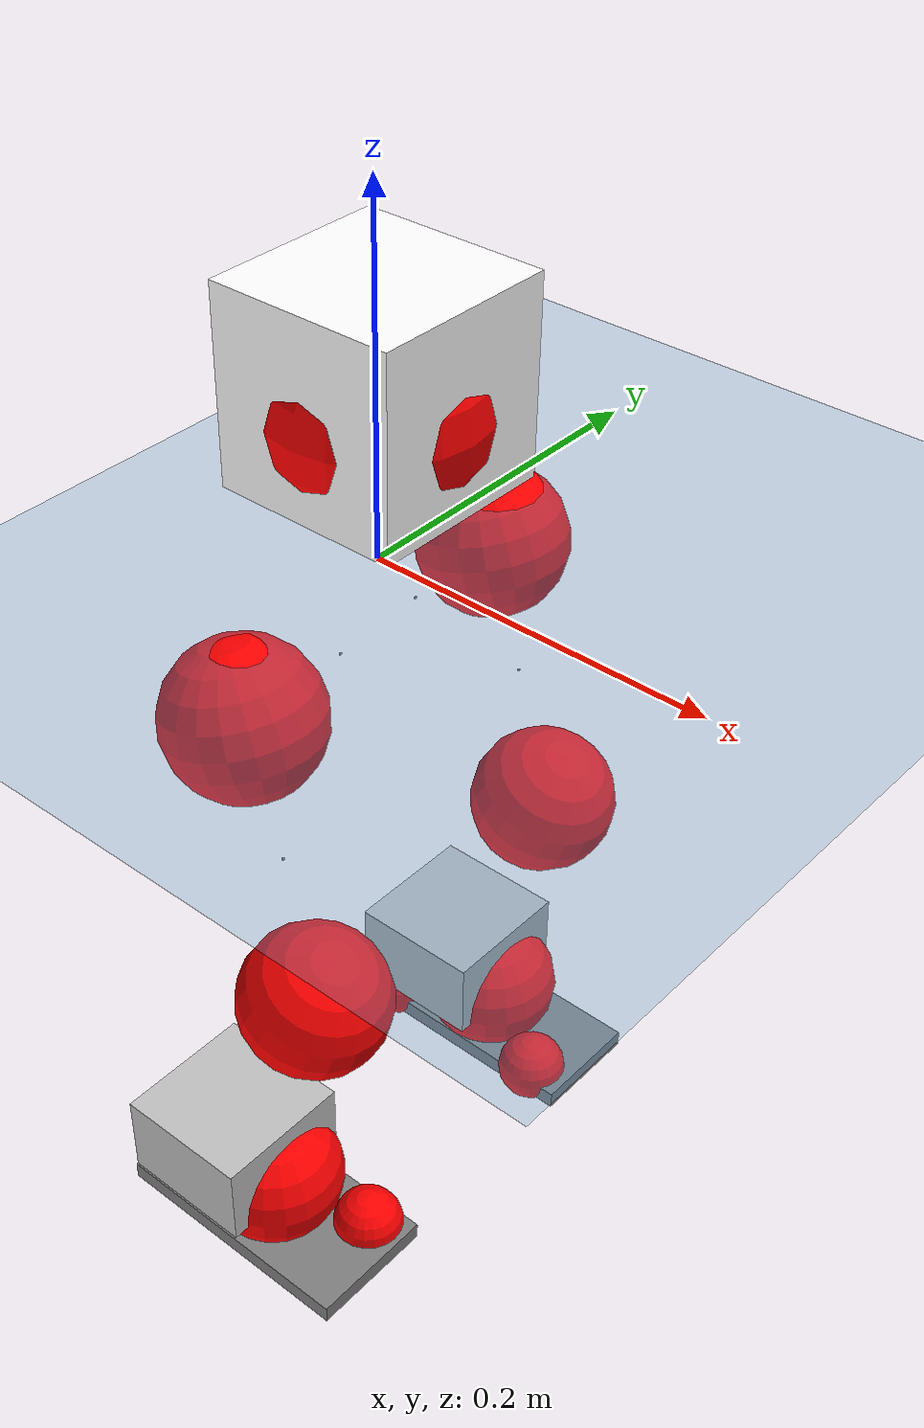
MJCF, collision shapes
<mujoco model="pi_12dof_release_v1">
  <compiler angle="radian" assetdir="assets" balanceinertia="true" inertiafromgeom="false"/>

  <option timestep="0.005" density="1.2" viscosity="2e-05"/>

  <size nkey="1"/>

  <visual>
    <quality shadowsize="8192"/>
    <map shadowclip="0.5"/>
  </visual>

  <default>
    <default class="/">
      <joint armature="0.01" damping="0.01" frictionloss="0.01"/>
      <geom contype="0" conaffinity="0" group="1" solref="-1000 -80"/>
      <site size="0.01 0.005 0.005" group="5"/>
      <general forcelimited="true" biastype="affine" gainprm="20" biasprm="0 -20 -0.5"/>
      <default class="foot">
        <geom size="0.0845 0.036 0.005" type="box" condim="6" group="4" priority="1" friction="0.9 0.2 0.2" solimp="0.015 1 0.005"/>
      </default>
      <default class="reward_collision_sphere">
        <geom group="5" rgba="1 0 0 1"/>
      </default>
    </default>
  </default>

  <asset>
    <texture type="skybox" colorspace="auto" name="//unnamed_texture_0" builtin="gradient" rgb1="0.95 0.95 0.95" rgb2="0.95 0.95 0.95" width="100" height="600"/>
    <texture type="2d" colorspace="auto" name="texplane" builtin="checker" rgb1="0.345 0.575 0.748" rgb2="0.345 0.575 0.748" markrgb="1 1 1" width="512" height="512"/>
    <material name="MatPlane" class="/" texture="texplane" texuniform="true" texrepeat="2 2" specular="0.9"/>
    <mesh name="baselink_1" class="/" file="baselink_1.STL"/>
    <mesh name="r_hip_pitch_link" class="/" file="r_hip_pitch_link.STL"/>
    <mesh name="r_hip_roll_link" class="/" file="r_hip_roll_link.STL"/>
    <mesh name="r_thigh_link" class="/" file="r_thigh_link.STL"/>
    <mesh name="r_calf_link" class="/" file="r_calf_link.STL"/>
    <mesh name="r_ankle_pitch_link" class="/" file="r_ankle_pitch_link.STL"/>
    <mesh name="r_ankle_roll_link" class="/" file="r_ankle_roll_link.STL"/>
    <mesh name="l_hip_pitch_link" class="/" file="l_hip_pitch_link.STL"/>
    <mesh name="l_hip_roll_link" class="/" file="l_hip_roll_link.STL"/>
    <mesh name="l_thigh_link" class="/" file="l_thigh_link.STL"/>
    <mesh name="l_calf_link" class="/" file="l_calf_link.STL"/>
    <mesh name="l_ankle_pitch_link" class="/" file="l_ankle_pitch_link.STL"/>
    <mesh name="l_ankle_roll_link" class="/" file="l_ankle_roll_link.STL"/>
  </asset>

  <worldbody>
    <geom name="floor" class="/" size="100 100 0.125" type="plane" group="0" material="MatPlane"/>
    <light name="toplight_shadow" class="/" pos="0 0 5" dir="0.0990148 0.0990148 -0.990148" type="directional" ambient="0.04 0.04 0.04" diffuse="0.55 0.55 0.55" specular="0.12 0.12 0.12"/>
    <light name="toplight_fill" class="/" pos="0 0 5" dir="0.0990148 0.0990148 -0.990148" type="directional" castshadow="false" ambient="0.04 0.04 0.04" diffuse="0.3 0.3 0.3" specular="0.08 0.08 0.08"/>
    <body name="trunk" pos="0.000654995 0.000674343 0.000990969" quat="1 -1.31401e-05 5.3794e-05 9.19973e-06">
      <inertial pos="0.00481466 0.00121668 0.049223" quat="0.687684 0.0215829 0.0270724 0.725184" mass="2.73928" diaginertia="0.00411878 0.0200853 0.0110139"/>
      <joint name="//unnamed_joint_0" type="free"/>
      <geom name="//unnamed_geom_1" class="/" type="mesh" density="0" rgba="1 1 1 1" mesh="baselink_1"/>
      <geom name="//unnamed_geom_2" class="/" size="0.0539672 0.0539672 0.0539672" pos="0 0 0.0971451" type="box" rgba="1 1 1 1"/>
      <geom name="//unnamed_geom_3" class="reward_collision_sphere" size="0.0593639" pos="0 0 0.085002"/>
      <site name="imu" class="/" pos="-0.00204624 0.00636251 0.00330554" size="0.0107934"/>
      <camera name="track" class="/" pos="0 -2.35769 0" quat="0.707107 0.707107 0 0" mode="trackcom"/>
      <camera name="ego_camera" class="/" pos="0.0633652 0 0.218576" quat="-0.5 -0.5 0.5 0.5"/>
      <body name="r_hip_pitch_link" pos="0.00122417 -0.0317065 -0.0429767" quat="0.992141 -5.58298e-05 -0.125122 0.00026085">
        <inertial pos="-8.79365e-05 -0.0646808 0.001569" quat="-0.0249452 0.704467 -0.0272046 0.708776" mass="0.471908" diaginertia="4.67959e-05 0.000231035 0.000216256"/>
        <joint name="r_hip_pitch_joint" class="/" pos="0 0 0" axis="-0.00992587 -0.999948 0.00229094" stiffness="0.00102955" range="-1.76102 1.22126" armature="0.0104571" damping="0.0118112" frictionloss="0.00942294"/>
        <geom name="//unnamed_geom_4" class="/" type="mesh" density="0" rgba="0.75294 0.75294 0.75294 1" mesh="r_hip_pitch_link"/>
        <geom name="//unnamed_geom_5" class="/" size="0.000539672 0.000539672 0.000539672" type="box" rgba="0.75294 0.75294 0.75294 1"/>
        <body name="r_hip_roll_link" pos="0.00206521 -0.0712499 0.000334026" quat="1 -2.22954e-08 2.61991e-06 2.87387e-06">
          <inertial pos="-0.00137101 0.0013273 -0.07322" quat="0.70071 -0.0842981 -0.0860704 0.703201" mass="0.489616" diaginertia="0.000146144 0.000636565 0.000328698"/>
          <joint name="r_hip_roll_joint" class="/" pos="0 0 0" axis="-0.999995 -0.00213152 0.00219737" stiffness="0.000952517" range="-0.107621 0.472043" armature="0.0105243" damping="0.0441214" frictionloss="0.0105374"/>
          <geom name="//unnamed_geom_6" class="/" type="mesh" density="0" rgba="0.75294 0.75294 0.75294 1" mesh="r_hip_roll_link"/>
          <geom name="//unnamed_geom_7" class="/" size="0.000539672 0.000539672 0.000539672" type="box" rgba="0.75294 0.75294 0.75294 1"/>
          <geom name="//unnamed_geom_8" class="reward_collision_sphere" size="0.0431737"/>
          <body name="r_thigh_link" pos="-0.00173784 0.00280839 -0.0844569" quat="1 -0.000707223 2.4477e-05 0.000117091">
            <inertial pos="0.000672982 0.00134282 -0.0538024" quat="0.737589 0.675243 -0.00106909 -0.00281656" mass="0.13767" diaginertia="5.364e-05 0.00020495 0.000158182"/>
            <joint name="r_thigh_joint" class="/" pos="0 0 0" axis="3.83343e-05 0.000191391 -1" range="-0.304255 0.598133" armature="0.00958974" damping="0.00584654" frictionloss="0.0103246"/>
            <geom name="//unnamed_geom_9" class="/" type="mesh" density="0" rgba="0.75294 0.75294 0.75294 1" mesh="r_thigh_link"/>
            <geom name="//unnamed_geom_10" class="/" size="0.000539672 0.000539672 0.000539672" type="box" rgba="0.75294 0.75294 0.75294 1"/>
            <body name="r_calf_link" pos="0.00225253 -0.00487841 -0.0865097" quat="0.94765 -0.000234192 0.31931 -1.15655e-05">
              <inertial pos="-0.00291343 0.00136685 -0.0823486" quat="0.999987 -0.00267144 -0.00137124 0.00418262" mass="1.05949" diaginertia="0.00148292 0.00852431 0.000460318"/>
              <joint name="r_calf_joint" class="/" pos="0 0 0" axis="-0.00325887 -0.999984 0.00471956" range="-1.742 0.67942" armature="0.00941943" damping="0.00884993" frictionloss="0.0117403"/>
              <geom name="//unnamed_geom_11" class="/" type="mesh" density="0" rgba="0.75294 0.75294 0.75294 1" mesh="r_calf_link"/>
              <geom name="//unnamed_geom_12" class="/" size="0.000539672 0.000539672 0.000539672" type="box" rgba="0.75294 0.75294 0.75294 1"/>
              <geom name="//unnamed_geom_13" class="reward_collision_sphere" size="0.0431737"/>
              <body name="r_ankle_pitch_link" pos="-0.00286589 -0.00416975 -0.168746" quat="0.979989 0.000134004 -0.199049 0.000751712">
                <inertial pos="0.00227959 0.00830231 -0.00111036" quat="0.00377319 0.708768 -0.00633322 0.705404" mass="0.217581" diaginertia="0.000131508 0.000498111 0.000301848"/>
                <joint name="r_ankle_pitch_joint" class="/" pos="0 0 0" axis="0.0148576 -0.999879 -0.00467602" stiffness="0.00688309" range="-1.26 0.44224" armature="0.0108716" damping="0.0110551" frictionloss="0.00948366"/>
                <geom name="//unnamed_geom_14" class="/" type="mesh" density="0" rgba="0.75294 0.75294 0.75294 1" mesh="r_ankle_pitch_link"/>
                <geom name="//unnamed_geom_15" class="/" size="0.0420944 0.0431737 0.0269836" type="box" rgba="0.75294 0.75294 0.75294 1"/>
                <body name="r_ankle_roll_link" pos="0.0676651 0.00601057 -0.000202881" quat="1 -0.00047677 0.000693663 -0.000340471">
                  <inertial pos="-0.0175102 -0.000940191 -0.0173687" quat="0.559439 0.434568 0.432297 0.55794" mass="0.658547" diaginertia="0.000501219 0.00233704 0.000770411"/>
                  <joint name="r_ankle_roll_joint" class="/" pos="0 0 0" axis="-1 0.000641586 7.04794e-05" stiffness="0.00646407" range="-0.0761521 0.133907" armature="0.0110404" damping="0" frictionloss="0.00990073"/>
                  <geom name="//unnamed_geom_16" class="/" type="mesh" density="0" rgba="0.75294 0.75294 0.75294 1" mesh="r_ankle_roll_link"/>
                  <geom name="//unnamed_geom_17" class="/" type="mesh" rgba="0.75294 0.75294 0.75294 1" mesh="r_ankle_roll_link"/>
                  <geom name="right_foot" class="foot" size="0.080565 0.040036 0.00562109" pos="-0.0430884 0 -0.0534298"/>
                  <geom name="//unnamed_geom_19" class="reward_collision_sphere" size="0.0431737" pos="-0.0422435 0 -0.0242863"/>
                  <geom name="//unnamed_geom_20" class="reward_collision_sphere" size="0.0215869" pos="0.012673 0.0235769 -0.0485726"/>
                  <geom name="//unnamed_geom_21" class="reward_collision_sphere" size="0.0215869" pos="-0.101384 0.0235769 -0.0485726"/>
                  <site name="right_foot" class="foot" pos="-0.0430884 0 -0.0534298" size="0.0107934"/>
                </body>
              </body>
            </body>
          </body>
        </body>
      </body>
      <body name="l_hip_pitch_link" pos="0.000704345 0.0267269 -0.0387165" quat="0.992117 -3.39973e-05 -0.125312 -0.00110447">
        <inertial pos="-0.000408666 0.0653797 0.00142872" quat="-0.0364625 0.709578 0.0179481 0.703454" mass="0.519753" diaginertia="5.65868e-05 0.000245694 0.000275973"/>
        <joint name="l_hip_pitch_joint" class="/" pos="0 0 0" axis="-0.00219825 0.999997 0.000873643" range="-1.25906 1.76466" armature="0.010669" damping="0.0135642" frictionloss="0.0110098"/>
        <geom name="//unnamed_geom_22" class="/" type="mesh" density="0" rgba="0.75294 0.75294 0.75294 1" mesh="l_hip_pitch_link"/>
        <geom name="//unnamed_geom_23" class="/" size="0.000539672 0.000539672 0.000539672" type="box" rgba="0.75294 0.75294 0.75294 1"/>
        <body name="l_hip_roll_link" pos="-0.00160448 0.0665642 0.0039834" quat="1 0.000168247 -4.73808e-05 -0.00072248">
          <inertial pos="0.000433211 -0.0010186 -0.0706394" quat="0.699424 -0.0696257 -0.0796016 0.706839" mass="0.475112" diaginertia="0.000143018 0.000669034 0.000345153"/>
          <joint name="l_hip_roll_joint" class="/" pos="0 0 0" axis="-0.999989 0.00406963 0.00226479" range="-0.439439 0.13238" armature="0.010145" damping="0.0116498" frictionloss="0.0120945"/>
          <geom name="//unnamed_geom_24" class="/" type="mesh" density="0" rgba="0.75294 0.75294 0.75294 1" mesh="l_hip_roll_link"/>
          <geom name="//unnamed_geom_25" class="/" size="0.000539672 0.000539672 0.000539672" type="box" rgba="0.75294 0.75294 0.75294 1"/>
          <geom name="//unnamed_geom_26" class="reward_collision_sphere" size="0.0431737"/>
          <body name="l_thigh_link" pos="-0.001732 0.00429898 -0.083786" quat="0.999999 0.000795384 -0.000232026 -0.000569693">
            <inertial pos="0.000480201 -0.00139306 -0.0607093" quat="0.675996 0.736905 -0.00035768 -0.00015952" mass="0.145126" diaginertia="5.31744e-05 0.000217603 0.000155313"/>
            <joint name="l_thigh_joint" class="/" pos="0 0 0" axis="-0.000454127 0.000680799 -1" range="-0.56758 0.299418" armature="0.0104122" damping="0" frictionloss="0.010745"/>
            <geom name="//unnamed_geom_27" class="/" type="mesh" density="0" rgba="0.75294 0.75294 0.75294 1" mesh="l_thigh_link"/>
            <geom name="//unnamed_geom_28" class="/" size="0.000539672 0.000539672 0.000539672" type="box" rgba="0.75294 0.75294 0.75294 1"/>
            <body name="l_calf_link" pos="-0.000140249 0.000704507 -0.0868516" quat="0.94791 0.00020386 0.318539 0.000229789">
              <inertial pos="0.00292631 0.00282484 -0.0851819" quat="0.999897 0.00786307 -0.0117125 0.00269334" mass="1.03853" diaginertia="0.00153057 0.00833311 0.000451772"/>
              <joint name="l_calf_joint" class="/" pos="0 0 0" axis="0.00425552 0.99999 -0.00161513" range="-0.600292 1.60706" armature="0.0121571" damping="0.020667" frictionloss="0.0121371"/>
              <geom name="//unnamed_geom_29" class="/" type="mesh" density="0" rgba="0.75294 0.75294 0.75294 1" mesh="l_calf_link"/>
              <geom name="//unnamed_geom_30" class="/" size="0.000539672 0.000539672 0.000539672" type="box" rgba="0.75294 0.75294 0.75294 1"/>
              <geom name="//unnamed_geom_31" class="reward_collision_sphere" size="0.0431737"/>
              <body name="l_ankle_pitch_link" pos="0.00125695 0.000371931 -0.169334" quat="0.980243 0.000608605 -0.197794 0.000481434">
                <inertial pos="0.00395423 0.00131426 0.00122366" quat="-0.00165021 0.714941 0.00707026 0.699147" mass="0.218454" diaginertia="0.00013219 0.000496104 0.000312378"/>
                <joint name="l_ankle_pitch_joint" class="/" pos="0 0 0" axis="-0.00335825 0.999974 0.00635145" range="-0.488113 1.31767" armature="0.011442" damping="0.0204667" frictionloss="0.0108201"/>
                <geom name="//unnamed_geom_32" class="/" type="mesh" density="0" rgba="0.75294 0.75294 0.75294 1" mesh="l_ankle_pitch_link"/>
                <geom name="//unnamed_geom_33" class="/" size="0.0420944 0.0431737 0.0269836" type="box" rgba="0.75294 0.75294 0.75294 1"/>
                <body name="l_ankle_roll_link" pos="0.0684706 0.00457021 -0.00128419" quat="1 0.000479891 0.000460213 -0.000664789">
                  <inertial pos="-0.0247575 -0.000600664 -0.0202488" quat="0.56617 0.423166 0.439166 0.55454" mass="0.641612" diaginertia="0.000466367 0.00224791 0.000761852"/>
                  <joint name="l_ankle_roll_joint" class="/" pos="0 0 0" axis="-0.999796 -0.0127947 0.0156261" range="-0.230613 0.160993" armature="0.00932248" damping="0" frictionloss="0.0116904"/>
                  <geom name="//unnamed_geom_34" class="/" type="mesh" density="0" rgba="0.75294 0.75294 0.75294 1" mesh="l_ankle_roll_link"/>
                  <geom name="//unnamed_geom_35" class="/" type="mesh" rgba="0.75294 0.75294 0.75294 1" mesh="l_ankle_roll_link"/>
                  <geom name="left_foot" class="foot" size="0.0822116 0.0359044 0.00559824" pos="-0.0430884 0 -0.0534298"/>
                  <geom name="//unnamed_geom_37" class="reward_collision_sphere" size="0.0431737" pos="-0.0422435 0 -0.0242863"/>
                  <geom name="//unnamed_geom_38" class="reward_collision_sphere" size="0.0215869" pos="0.012673 -0.0235769 -0.0485726"/>
                  <geom name="//unnamed_geom_39" class="reward_collision_sphere" size="0.0215869" pos="-0.101384 -0.0235769 -0.0485726"/>
                  <site name="left_foot" class="foot" pos="-0.0430884 0 -0.0534298" size="0.0107934"/>
                </body>
              </body>
            </body>
          </body>
        </body>
      </body>
    </body>
  </worldbody>

  <contact>
    <pair class="/" geom1="floor" geom2="right_foot" name="//unnamed_contact_1"/>
    <pair class="/" geom1="floor" geom2="left_foot" name="//unnamed_contact_0"/>
  </contact>

  <actuator>
    <general name="r_hip_pitch_joint" class="/" joint="r_hip_pitch_joint" forcerange="-20.5511 20.5511" gainprm="21.0341" biasprm="0 -21.0341 -0.514508"/>
    <general name="r_hip_roll_joint" class="/" joint="r_hip_roll_joint" forcerange="-22.7697 22.7697" gainprm="21.0341" biasprm="0 -21.0341 -0.514508"/>
    <general name="r_thigh_joint" class="/" joint="r_thigh_joint" forcerange="-22.9926 22.9926" gainprm="21.0341" biasprm="0 -21.0341 -0.514508"/>
    <general name="r_calf_joint" class="/" joint="r_calf_joint" forcerange="-24.4095 24.4095" gainprm="21.0341" biasprm="0 -21.0341 -0.514508"/>
    <general name="r_ankle_pitch_joint" class="/" joint="r_ankle_pitch_joint" forcerange="-20.1631 20.1631" gainprm="21.0341" biasprm="0 -21.0341 -0.514508"/>
    <general name="r_ankle_roll_joint" class="/" joint="r_ankle_roll_joint" forcerange="-20.106 20.106" gainprm="21.0341" biasprm="0 -21.0341 -0.514508"/>
    <general name="l_hip_pitch_joint" class="/" joint="l_hip_pitch_joint" forcerange="-18.8586 18.8586" gainprm="21.0341" biasprm="0 -21.0341 -0.514508"/>
    <general name="l_hip_roll_joint" class="/" joint="l_hip_roll_joint" forcerange="-22.3779 22.3779" gainprm="21.0341" biasprm="0 -21.0341 -0.514508"/>
    <general name="l_thigh_joint" class="/" joint="l_thigh_joint" forcerange="-20.4322 20.4322" gainprm="21.0341" biasprm="0 -21.0341 -0.514508"/>
    <general name="l_calf_joint" class="/" joint="l_calf_joint" forcerange="-20.1275 20.1275" gainprm="21.0341" biasprm="0 -21.0341 -0.514508"/>
    <general name="l_ankle_pitch_joint" class="/" joint="l_ankle_pitch_joint" forcerange="-20.11 20.11" gainprm="21.0341" biasprm="0 -21.0341 -0.514508"/>
    <general name="l_ankle_roll_joint" class="/" joint="l_ankle_roll_joint" forcerange="-23.0869 23.0869" gainprm="21.0341" biasprm="0 -21.0341 -0.514508"/>
  </actuator>

  <sensor>
    <gyro site="imu" name="imu_angular_velocity"/>
    <velocimeter site="imu" name="imu_linear_velocity"/>
    <framelinvel objtype="site" objname="left_foot" name="left_foot_global_linear_velocity"/>
    <framelinvel objtype="site" objname="right_foot" name="right_foot_global_linear_velocity"/>
  </sensor>

  <keyframe>
    <key name="home" qpos="0 0 0.291 1 0 0 0 0.4 0 0 -0.8 0.4 0 -0.4 0 0 0.8 -0.4 0"/>
  </keyframe>
</mujoco>
